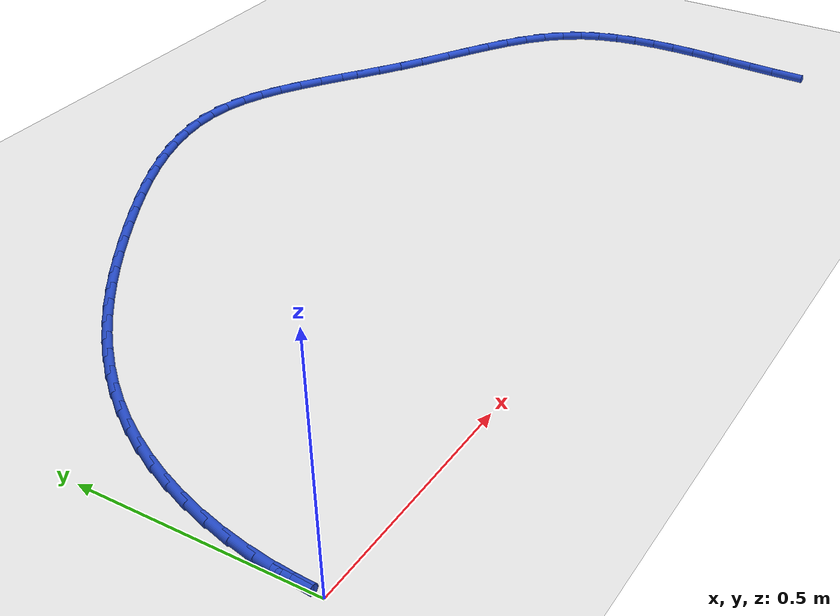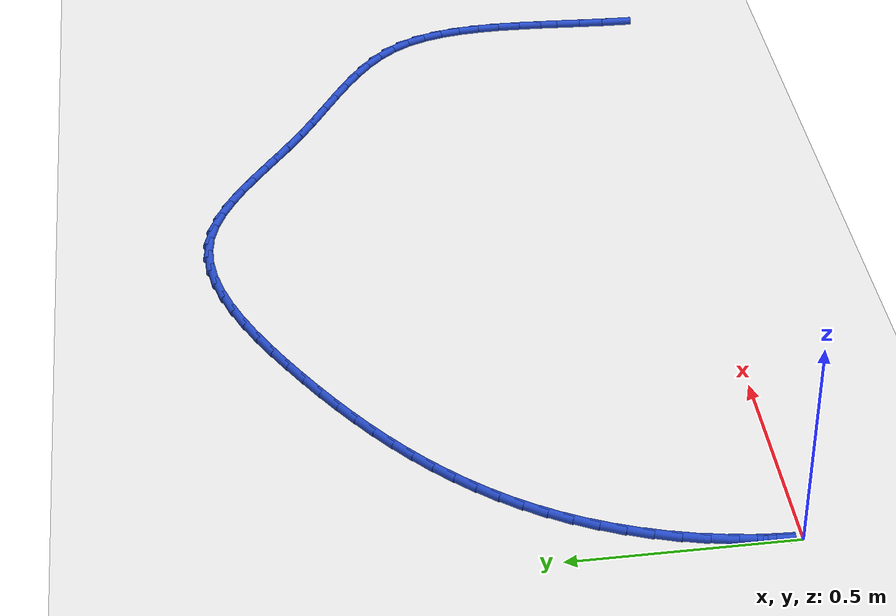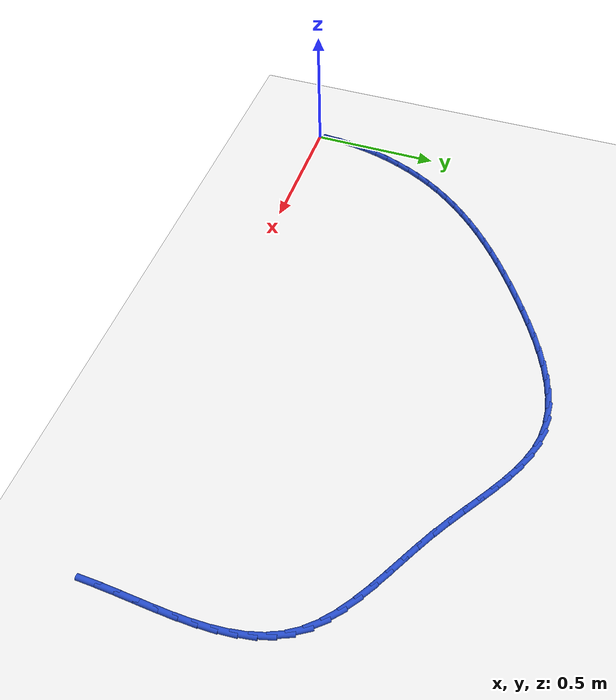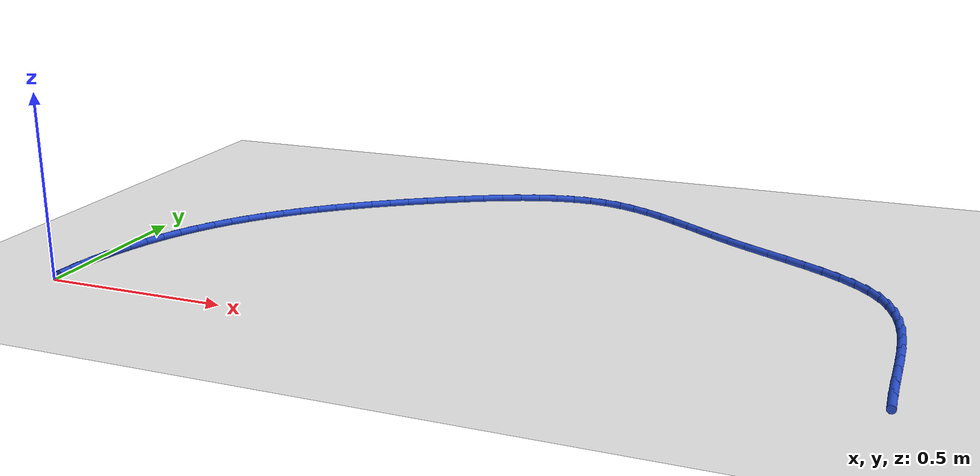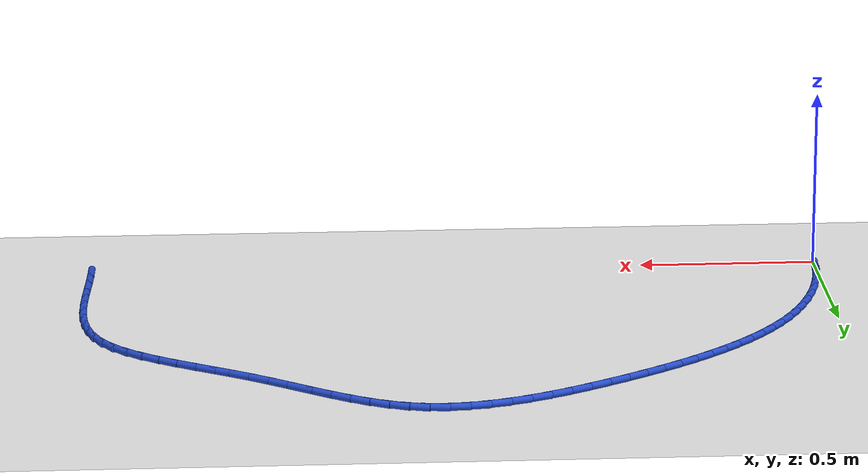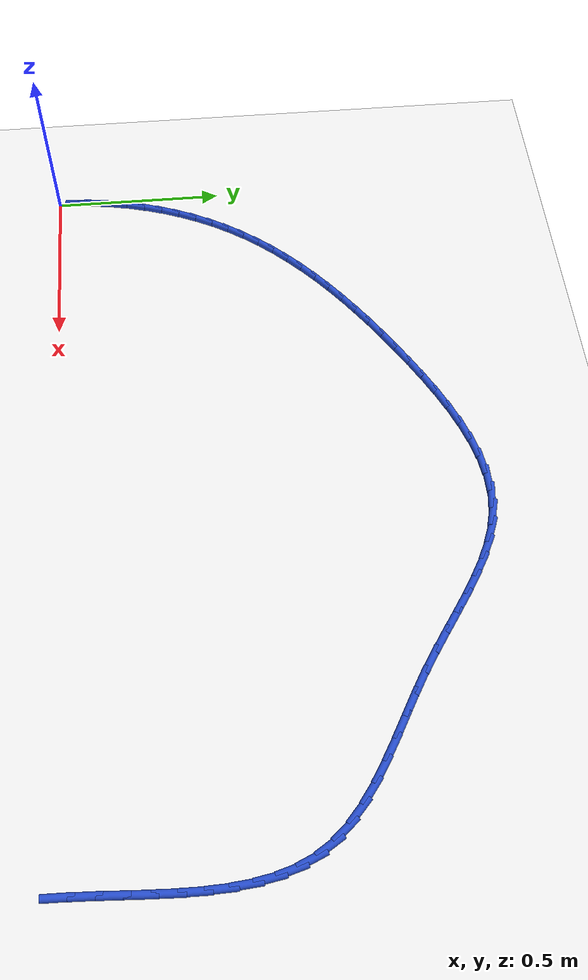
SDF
<sdf version="1.6">
 <world name="default">
  <model name="ground_plane">
   <static>1</static>
   <link name="link">
    <collision name="collision">
     <geometry><plane><normal>0 0 1</normal><size>100 100</size></plane></geometry>
     <surface><friction><ode><mu>100</mu><mu2>50</mu2></ode></friction></surface>
    </collision>
    <visual name="visual">
     <cast_shadows>0</cast_shadows>
     <geometry><plane><normal>0 0 1</normal><size>100 100</size></plane></geometry>
     <material>
      <script><uri>file://media/materials/scripts/gazebo.material</uri><name>Gazebo/WhiteGlow</name></script>
     </material>
    </visual>
   </link>
  </model>
  <model name="line">
   <link name="link_1">
    <pose>0.002143274971639117 0.058206338962033 0.01 0 1.57 1.477408817202381</pose>
    <collision name="collision">
     <geometry><cylinder><radius>0.01</radius><length>0.08</length></cylinder></geometry>
    </collision>
    <visual name="visual">
     <material>
      <script><name>Gazebo/Blue</name><uri>file://media/materials/scripts/gazebo.material</uri></script>
     </material>
     <geometry><cylinder><radius>0.01</radius><length>0.08</length></cylinder></geometry>
    </visual>
   </link>
   <link name="link_2">
    <pose>0.0075591069849473246 0.11603075940068548 0.01 0 1.57 1.4215644441442734</pose>
    <collision name="collision">
     <geometry><cylinder><radius>0.01</radius><length>0.08</length></cylinder></geometry>
    </collision>
    <visual name="visual">
     <material>
      <script><name>Gazebo/Blue</name><uri>file://media/materials/scripts/gazebo.material</uri></script>
     </material>
     <geometry><cylinder><radius>0.01</radius><length>0.08</length></cylinder></geometry>
    </visual>
   </link>
   <link name="link_3">
    <pose>0.016165661979714384 0.17327435919353368 0.01 0 1.57 1.36621350218202</pose>
    <collision name="collision">
     <geometry><cylinder><radius>0.01</radius><length>0.08</length></cylinder></geometry>
    </collision>
    <visual name="visual">
     <material>
      <script><name>Gazebo/Blue</name><uri>file://media/materials/scripts/gazebo.material</uri></script>
     </material>
     <geometry><cylinder><radius>0.01</radius><length>0.08</length></cylinder></geometry>
    </visual>
   </link>
   <link name="link_4">
    <pose>0.02788110589573012 0.22973823621815392 0.01 0 1.57 1.3110955089772809</pose>
    <collision name="collision">
     <geometry><cylinder><radius>0.01</radius><length>0.08</length></cylinder></geometry>
    </collision>
    <visual name="visual">
     <material>
      <script><name>Gazebo/Blue</name><uri>file://media/materials/scripts/gazebo.material</uri></script>
     </material>
     <geometry><cylinder><radius>0.01</radius><length>0.08</length></cylinder></geometry>
    </visual>
   </link>
   <link name="link_5">
    <pose>0.04262360467278443 0.28522348835212274 0.01 0 1.57 1.2559365343823319</pose>
    <collision name="collision">
     <geometry><cylinder><radius>0.01</radius><length>0.08</length></cylinder></geometry>
    </collision>
    <visual name="visual">
     <material>
      <script><name>Gazebo/Blue</name><uri>file://media/materials/scripts/gazebo.material</uri></script>
     </material>
     <geometry><cylinder><radius>0.01</radius><length>0.08</length></cylinder></geometry>
    </visual>
   </link>
   <link name="link_6">
    <pose>0.060311324250667146 0.3395312134730162 0.01 0 1.57 1.2004514054745623</pose>
    <collision name="collision">
     <geometry><cylinder><radius>0.01</radius><length>0.08</length></cylinder></geometry>
    </collision>
    <visual name="visual">
     <material>
      <script><name>Gazebo/Blue</name><uri>file://media/materials/scripts/gazebo.material</uri></script>
     </material>
     <geometry><cylinder><radius>0.01</radius><length>0.08</length></cylinder></geometry>
    </visual>
   </link>
   <link name="link_7">
    <pose>0.08086243056916811 0.3924625094584107 0.01 0 1.57 1.1443457385676046</pose>
    <collision name="collision">
     <geometry><cylinder><radius>0.01</radius><length>0.08</length></cylinder></geometry>
    </collision>
    <visual name="visual">
     <material>
      <script><name>Gazebo/Blue</name><uri>file://media/materials/scripts/gazebo.material</uri></script>
     </material>
     <geometry><cylinder><radius>0.01</radius><length>0.08</length></cylinder></geometry>
    </visual>
   </link>
   <link name="link_8">
    <pose>0.10419508956807717 0.4438184741858824 0.01 0 1.57 1.087318199513742</pose>
    <collision name="collision">
     <geometry><cylinder><radius>0.01</radius><length>0.08</length></cylinder></geometry>
    </collision>
    <visual name="visual">
     <material>
      <script><name>Gazebo/Blue</name><uri>file://media/materials/scripts/gazebo.material</uri></script>
     </material>
     <geometry><cylinder><radius>0.01</radius><length>0.08</length></cylinder></geometry>
    </visual>
   </link>
   <link name="link_9">
    <pose>0.1302274671871842 0.4934002055330079 0.01 0 1.57 1.0294176238372474</pose>
    <collision name="collision">
     <geometry><cylinder><radius>0.01</radius><length>0.08</length></cylinder></geometry>
    </collision>
    <visual name="visual">
     <material>
      <script><name>Gazebo/Blue</name><uri>file://media/materials/scripts/gazebo.material</uri></script>
     </material>
     <geometry><cylinder><radius>0.01</radius><length>0.08</length></cylinder></geometry>
    </visual>
   </link>
   <link name="link_10">
    <pose>0.15887488737706212 0.5410422631524515 0.01 0 1.57 0.9727533422366311</pose>
    <collision name="collision">
     <geometry><cylinder><radius>0.01</radius><length>0.08</length></cylinder></geometry>
    </collision>
    <visual name="visual">
     <material>
      <script><name>Gazebo/Blue</name><uri>file://media/materials/scripts/gazebo.material</uri></script>
     </material>
     <geometry><cylinder><radius>0.01</radius><length>0.08</length></cylinder></geometry>
    </visual>
   </link>
   <link name="link_11">
    <pose>0.19003549920841117 0.5867814249051841 0.01 0 1.57 0.9185564081571217</pose>
    <collision name="collision">
     <geometry><cylinder><radius>0.01</radius><length>0.08</length></cylinder></geometry>
    </collision>
    <visual name="visual">
     <material>
      <script><name>Gazebo/Blue</name><uri>file://media/materials/scripts/gazebo.material</uri></script>
     </material>
     <geometry><cylinder><radius>0.01</radius><length>0.08</length></cylinder></geometry>
    </visual>
   </link>
   <link name="link_12">
    <pose>0.22360103262190523 0.6307300479273971 0.01 0 1.57 0.8672343503055672</pose>
    <collision name="collision">
     <geometry><cylinder><radius>0.01</radius><length>0.08</length></cylinder></geometry>
    </collision>
    <visual name="visual">
     <material>
      <script><name>Gazebo/Blue</name><uri>file://media/materials/scripts/gazebo.material</uri></script>
     </material>
     <geometry><cylinder><radius>0.01</radius><length>0.08</length></cylinder></geometry>
    </visual>
   </link>
   <link name="link_13">
    <pose>0.2594632064468007 0.6730006201818697 0.01 0 1.57 0.8190906729330214</pose>
    <collision name="collision">
     <geometry><cylinder><radius>0.01</radius><length>0.08</length></cylinder></geometry>
    </collision>
    <visual name="visual">
     <material>
      <script><name>Gazebo/Blue</name><uri>file://media/materials/scripts/gazebo.material</uri></script>
     </material>
     <geometry><cylinder><radius>0.01</radius><length>0.08</length></cylinder></geometry>
    </visual>
   </link>
   <link name="link_14">
    <pose>0.29751373951235427 0.7137056296313818 0.01 0 1.57 0.7743297271647759</pose>
    <collision name="collision">
     <geometry><cylinder><radius>0.01</radius><length>0.08</length></cylinder></geometry>
    </collision>
    <visual name="visual">
     <material>
      <script><name>Gazebo/Blue</name><uri>file://media/materials/scripts/gazebo.material</uri></script>
     </material>
     <geometry><cylinder><radius>0.01</radius><length>0.08</length></cylinder></geometry>
    </visual>
   </link>
   <link name="link_15">
    <pose>0.33764435064782206 0.7529575642387125 0.01 0 1.57 0.7330667396349645</pose>
    <collision name="collision">
     <geometry><cylinder><radius>0.01</radius><length>0.08</length></cylinder></geometry>
    </collision>
    <visual name="visual">
     <material>
      <script><name>Gazebo/Blue</name><uri>file://media/materials/scripts/gazebo.material</uri></script>
     </material>
     <geometry><cylinder><radius>0.01</radius><length>0.08</length></cylinder></geometry>
    </visual>
   </link>
   <link name="link_16">
    <pose>0.3797467586824609 0.790868911966642 0.01 0 1.57 0.6953417352910714</pose>
    <collision name="collision">
     <geometry><cylinder><radius>0.01</radius><length>0.08</length></cylinder></geometry>
    </collision>
    <visual name="visual">
     <material>
      <script><name>Gazebo/Blue</name><uri>file://media/materials/scripts/gazebo.material</uri></script>
     </material>
     <geometry><cylinder><radius>0.01</radius><length>0.08</length></cylinder></geometry>
    </visual>
   </link>
   <link name="link_17">
    <pose>0.423712682445527 0.8275521607779492 0.01 0 1.57 0.6611349717072738</pose>
    <collision name="collision">
     <geometry><cylinder><radius>0.01</radius><length>0.08</length></cylinder></geometry>
    </collision>
    <visual name="visual">
     <material>
      <script><name>Gazebo/Blue</name><uri>file://media/materials/scripts/gazebo.material</uri></script>
     </material>
     <geometry><cylinder><radius>0.01</radius><length>0.08</length></cylinder></geometry>
    </visual>
   </link>
   <link name="link_18">
    <pose>0.46943384076627703 0.8631197986354142 0.01 0 1.57 0.6303820734764467</pose>
    <collision name="collision">
     <geometry><cylinder><radius>0.01</radius><length>0.08</length></cylinder></geometry>
    </collision>
    <visual name="visual">
     <material>
      <script><name>Gazebo/Blue</name><uri>file://media/materials/scripts/gazebo.material</uri></script>
     </material>
     <geometry><cylinder><radius>0.01</radius><length>0.08</length></cylinder></geometry>
    </visual>
   </link>
   <link name="link_19">
    <pose>0.5168019524739672 0.8976843135018163 0.01 0 1.57 0.602987701111885</pose>
    <collision name="collision">
     <geometry><cylinder><radius>0.01</radius><length>0.08</length></cylinder></geometry>
    </collision>
    <visual name="visual">
     <material>
      <script><name>Gazebo/Blue</name><uri>file://media/materials/scripts/gazebo.material</uri></script>
     </material>
     <geometry><cylinder><radius>0.01</radius><length>0.08</length></cylinder></geometry>
    </visual>
   </link>
   <link name="link_20">
    <pose>0.5657087363978541 0.9313581933399351 0.01 0 1.57 0.5788371581238002</pose>
    <collision name="collision">
     <geometry><cylinder><radius>0.01</radius><length>0.08</length></cylinder></geometry>
    </collision>
    <visual name="visual">
     <material>
      <script><name>Gazebo/Blue</name><uri>file://media/materials/scripts/gazebo.material</uri></script>
     </material>
     <geometry><cylinder><radius>0.01</radius><length>0.08</length></cylinder></geometry>
    </visual>
   </link>
   <link name="link_21">
    <pose>0.6160459113671943 0.9642539261125499 0.01 0 1.57 0.5578057228505976</pose>
    <collision name="collision">
     <geometry><cylinder><radius>0.01</radius><length>0.08</length></cylinder></geometry>
    </collision>
    <visual name="visual">
     <material>
      <script><name>Gazebo/Blue</name><uri>file://media/materials/scripts/gazebo.material</uri></script>
     </material>
     <geometry><cylinder><radius>0.01</radius><length>0.08</length></cylinder></geometry>
    </visual>
   </link>
   <link name="link_22">
    <pose>0.6677051955383404 0.9964839963238391 0.01 0 1.57 0.5378558969572911</pose>
    <collision name="collision">
     <geometry><cylinder><radius>0.01</radius><length>0.08</length></cylinder></geometry>
    </collision>
    <visual name="visual">
     <material>
      <script><name>Gazebo/Blue</name><uri>file://media/materials/scripts/gazebo.material</uri></script>
     </material>
     <geometry><cylinder><radius>0.01</radius><length>0.08</length></cylinder></geometry>
    </visual>
   </link>
   <link name="link_23">
    <pose>0.7205481341176398 1.0280058050879728 0.01 0 1.57 0.5117162316238449</pose>
    <collision name="collision">
     <geometry><cylinder><radius>0.01</radius><length>0.08</length></cylinder></geometry>
    </collision>
    <visual name="visual">
     <material>
      <script><name>Gazebo/Blue</name><uri>file://media/materials/scripts/gazebo.material</uri></script>
     </material>
     <geometry><cylinder><radius>0.01</radius><length>0.08</length></cylinder></geometry>
    </visual>
   </link>
   <link name="link_24">
    <pose>0.7743256151867948 1.058207996337085 0.01 0 1.57 0.4771064160655235</pose>
    <collision name="collision">
     <geometry><cylinder><radius>0.01</radius><length>0.08</length></cylinder></geometry>
    </collision>
    <visual name="visual">
     <material>
      <script><name>Gazebo/Blue</name><uri>file://media/materials/scripts/gazebo.material</uri></script>
     </material>
     <geometry><cylinder><radius>0.01</radius><length>0.08</length></cylinder></geometry>
    </visual>
   </link>
   <link name="link_25">
    <pose>0.8287631658113811 1.086348863064665 0.01 0 1.57 0.43293160979130996</pose>
    <collision name="collision">
     <geometry><cylinder><radius>0.01</radius><length>0.08</length></cylinder></geometry>
    </collision>
    <visual name="visual">
     <material>
      <script><name>Gazebo/Blue</name><uri>file://media/materials/scripts/gazebo.material</uri></script>
     </material>
     <geometry><cylinder><radius>0.01</radius><length>0.08</length></cylinder></geometry>
    </visual>
   </link>
   <link name="link_26">
    <pose>0.8835863130569741 1.1116866982642009 0.01 0 1.57 0.3776688760962628</pose>
    <collision name="collision">
     <geometry><cylinder><radius>0.01</radius><length>0.08</length></cylinder></geometry>
    </collision>
    <visual name="visual">
     <material>
      <script><name>Gazebo/Blue</name><uri>file://media/materials/scripts/gazebo.material</uri></script>
     </material>
     <geometry><cylinder><radius>0.01</radius><length>0.08</length></cylinder></geometry>
    </visual>
   </link>
   <link name="link_27">
    <pose>0.9385205839891511 1.1334797949291837 0.01 0 1.57 0.3093709451765337</pose>
    <collision name="collision">
     <geometry><cylinder><radius>0.01</radius><length>0.08</length></cylinder></geometry>
    </collision>
    <visual name="visual">
     <material>
      <script><name>Gazebo/Blue</name><uri>file://media/materials/scripts/gazebo.material</uri></script>
     </material>
     <geometry><cylinder><radius>0.01</radius><length>0.08</length></cylinder></geometry>
    </visual>
   </link>
   <link name="link_28">
    <pose>0.9932915056734871 1.1509864460531014 0.01 0 1.57 0.22575172174026453</pose>
    <collision name="collision">
     <geometry><cylinder><radius>0.01</radius><length>0.08</length></cylinder></geometry>
    </collision>
    <visual name="visual">
     <material>
      <script><name>Gazebo/Blue</name><uri>file://media/materials/scripts/gazebo.material</uri></script>
     </material>
     <geometry><cylinder><radius>0.01</radius><length>0.08</length></cylinder></geometry>
    </visual>
   </link>
   <link name="link_29">
    <pose>1.0476246051755598 1.163464944629445 0.01 0 1.57 0.12446587486869443</pose>
    <collision name="collision">
     <geometry><cylinder><radius>0.01</radius><length>0.08</length></cylinder></geometry>
    </collision>
    <visual name="visual">
     <material>
      <script><name>Gazebo/Blue</name><uri>file://media/materials/scripts/gazebo.material</uri></script>
     </material>
     <geometry><cylinder><radius>0.01</radius><length>0.08</length></cylinder></geometry>
    </visual>
   </link>
   <link name="link_30">
    <pose>1.1012454095609432 1.170173583651702 0.01 0 1.57 0.003744184456880021</pose>
    <collision name="collision">
     <geometry><cylinder><radius>0.01</radius><length>0.08</length></cylinder></geometry>
    </collision>
    <visual name="visual">
     <material>
      <script><name>Gazebo/Blue</name><uri>file://media/materials/scripts/gazebo.material</uri></script>
     </material>
     <geometry><cylinder><radius>0.01</radius><length>0.08</length></cylinder></geometry>
    </visual>
   </link>
   <link name="link_31">
    <pose>1.1538794458952144 1.1703706561133627 0.01 0 1.57 -0.1362777572695397</pose>
    <collision name="collision">
     <geometry><cylinder><radius>0.01</radius><length>0.08</length></cylinder></geometry>
    </collision>
    <visual name="visual">
     <material>
      <script><name>Gazebo/Blue</name><uri>file://media/materials/scripts/gazebo.material</uri></script>
     </material>
     <geometry><cylinder><radius>0.01</radius><length>0.08</length></cylinder></geometry>
    </visual>
   </link>
   <link name="link_32">
    <pose>1.2052558873723844 1.163325522601262 0.01 0 1.57 -0.27892139177132647</pose>
    <collision name="collision">
     <geometry><cylinder><radius>0.01</radius><length>0.08</length></cylinder></geometry>
    </collision>
    <visual name="visual">
     <material>
      <script><name>Gazebo/Blue</name><uri>file://media/materials/scripts/gazebo.material</uri></script>
     </material>
     <geometry><cylinder><radius>0.01</radius><length>0.08</length></cylinder></geometry>
    </visual>
   </link>
   <link name="link_33">
    <pose>1.2553273264457774 1.1489857187999484 0.01 0 1.57 -0.39795699870893403</pose>
    <collision name="collision">
     <geometry><cylinder><radius>0.01</radius><length>0.08</length></cylinder></geometry>
    </collision>
    <visual name="visual">
     <material>
      <script><name>Gazebo/Blue</name><uri>file://media/materials/scripts/gazebo.material</uri></script>
     </material>
     <geometry><cylinder><radius>0.01</radius><length>0.08</length></cylinder></geometry>
    </visual>
   </link>
   <link name="link_34">
    <pose>1.3043953568792896 1.1283581519030756 0.01 0 1.57 -0.49003506738977853</pose>
    <collision name="collision">
     <geometry><cylinder><radius>0.01</radius><length>0.08</length></cylinder></geometry>
    </collision>
    <visual name="visual">
     <material>
      <script><name>Gazebo/Blue</name><uri>file://media/materials/scripts/gazebo.material</uri></script>
     </material>
     <geometry><cylinder><radius>0.01</radius><length>0.08</length></cylinder></geometry>
    </visual>
   </link>
   <link name="link_35">
    <pose>1.352791912028568 1.1025418230252135 0.01 0 1.57 -0.5566585420425708</pose>
    <collision name="collision">
     <geometry><cylinder><radius>0.01</radius><length>0.08</length></cylinder></geometry>
    </collision>
    <visual name="visual">
     <material>
      <script><name>Gazebo/Blue</name><uri>file://media/materials/scripts/gazebo.material</uri></script>
     </material>
     <geometry><cylinder><radius>0.01</radius><length>0.08</length></cylinder></geometry>
    </visual>
   </link>
   <link name="link_36">
    <pose>1.4008489252492582 1.072635733280933 0.01 0 1.57 -0.6003470063804398</pose>
    <collision name="collision">
     <geometry><cylinder><radius>0.01</radius><length>0.08</length></cylinder></geometry>
    </collision>
    <visual name="visual">
     <material>
      <script><name>Gazebo/Blue</name><uri>file://media/materials/scripts/gazebo.material</uri></script>
     </material>
     <geometry><cylinder><radius>0.01</radius><length>0.08</length></cylinder></geometry>
    </visual>
   </link>
   <link name="link_37">
    <pose>1.4488983298970068 1.0397388837848045 0.01 0 1.57 -0.6234717561852816</pose>
    <collision name="collision">
     <geometry><cylinder><radius>0.01</radius><length>0.08</length></cylinder></geometry>
    </collision>
    <visual name="visual">
     <material>
      <script><name>Gazebo/Blue</name><uri>file://media/materials/scripts/gazebo.material</uri></script>
     </material>
     <geometry><cylinder><radius>0.01</radius><length>0.08</length></cylinder></geometry>
    </visual>
   </link>
   <link name="link_38">
    <pose>1.4972720593274587 1.0049502756513982 0.01 0 1.57 -0.6277709250855734</pose>
    <collision name="collision">
     <geometry><cylinder><radius>0.01</radius><length>0.08</length></cylinder></geometry>
    </collision>
    <visual name="visual">
     <material>
      <script><name>Gazebo/Blue</name><uri>file://media/materials/scripts/gazebo.material</uri></script>
     </material>
     <geometry><cylinder><radius>0.01</radius><length>0.08</length></cylinder></geometry>
    </visual>
   </link>
   <link name="link_39">
    <pose>1.5463020468962612 0.9693689099952848 0.01 0 1.57 -0.614238117465308</pose>
    <collision name="collision">
     <geometry><cylinder><radius>0.01</radius><length>0.08</length></cylinder></geometry>
    </collision>
    <visual name="visual">
     <material>
      <script><name>Gazebo/Blue</name><uri>file://media/materials/scripts/gazebo.material</uri></script>
     </material>
     <geometry><cylinder><radius>0.01</radius><length>0.08</length></cylinder></geometry>
    </visual>
   </link>
   <link name="link_40">
    <pose>1.596320225959059 0.9340937879310347 0.01 0 1.57 -0.5837516183680864</pose>
    <collision name="collision">
     <geometry><cylinder><radius>0.01</radius><length>0.08</length></cylinder></geometry>
    </collision>
    <visual name="visual">
     <material>
      <script><name>Gazebo/Blue</name><uri>file://media/materials/scripts/gazebo.material</uri></script>
     </material>
     <geometry><cylinder><radius>0.01</radius><length>0.08</length></cylinder></geometry>
    </visual>
   </link>
   <link name="link_41">
    <pose>1.6476381797299307 0.9001960383913923 0.01 0 1.57 -0.552269740236562</pose>
    <collision name="collision">
     <geometry><cylinder><radius>0.01</radius><length>0.08</length></cylinder></geometry>
    </collision>
    <visual name="visual">
     <material>
      <script><name>Gazebo/Blue</name><uri>file://media/materials/scripts/gazebo.material</uri></script>
     </material>
     <geometry><cylinder><radius>0.01</radius><length>0.08</length></cylinder></geometry>
    </visual>
   </link>
   <link name="link_42">
    <pose>1.699979578832467 0.8679415670842455 0.01 0 1.57 -0.5375929052391143</pose>
    <collision name="collision">
     <geometry><cylinder><radius>0.01</radius><length>0.08</length></cylinder></geometry>
    </collision>
    <visual name="visual">
     <material>
      <script><name>Gazebo/Blue</name><uri>file://media/materials/scripts/gazebo.material</uri></script>
     </material>
     <geometry><cylinder><radius>0.01</radius><length>0.08</length></cylinder></geometry>
    </visual>
   </link>
   <link name="link_43">
    <pose>1.7524047049711744 0.8366876817840443 0.01 0 1.57 -0.540768442576358</pose>
    <collision name="collision">
     <geometry><cylinder><radius>0.01</radius><length>0.08</length></cylinder></geometry>
    </collision>
    <visual name="visual">
     <material>
      <script><name>Gazebo/Blue</name><uri>file://media/materials/scripts/gazebo.material</uri></script>
     </material>
     <geometry><cylinder><radius>0.01</radius><length>0.08</length></cylinder></geometry>
    </visual>
   </link>
   <link name="link_44">
    <pose>1.803938325375896 0.8057430485448853 0.01 0 1.57 -0.5627138057682131</pose>
    <collision name="collision">
     <geometry><cylinder><radius>0.01</radius><length>0.08</length></cylinder></geometry>
    </collision>
    <visual name="visual">
     <material>
      <script><name>Gazebo/Blue</name><uri>file://media/materials/scripts/gazebo.material</uri></script>
     </material>
     <geometry><cylinder><radius>0.01</radius><length>0.08</length></cylinder></geometry>
    </visual>
   </link>
   <link name="link_45">
    <pose>1.853605207276473 0.7744163334208649 0.01 0 1.57 -0.6052975381607174</pose>
    <collision name="collision">
     <geometry><cylinder><radius>0.01</radius><length>0.08</length></cylinder></geometry>
    </collision>
    <visual name="visual">
     <material>
      <script><name>Gazebo/Blue</name><uri>file://media/materials/scripts/gazebo.material</uri></script>
     </material>
     <geometry><cylinder><radius>0.01</radius><length>0.08</length></cylinder></geometry>
    </visual>
   </link>
   <link name="link_46">
    <pose>1.900430117902748 0.7420162024660792 0.01 0 1.57 -0.6713106760674347</pose>
    <collision name="collision">
     <geometry><cylinder><radius>0.01</radius><length>0.08</length></cylinder></geometry>
    </collision>
    <visual name="visual">
     <material>
      <script><name>Gazebo/Blue</name><uri>file://media/materials/scripts/gazebo.material</uri></script>
     </material>
     <geometry><cylinder><radius>0.01</radius><length>0.08</length></cylinder></geometry>
    </visual>
   </link>
   <link name="link_47">
    <pose>1.9434378244845631 0.7078513217346248 0.01 0 1.57 -0.764097463277751</pose>
    <collision name="collision">
     <geometry><cylinder><radius>0.01</radius><length>0.08</length></cylinder></geometry>
    </collision>
    <visual name="visual">
     <material>
      <script><name>Gazebo/Blue</name><uri>file://media/materials/scripts/gazebo.material</uri></script>
     </material>
     <geometry><cylinder><radius>0.01</radius><length>0.08</length></cylinder></geometry>
    </visual>
   </link>
   <link name="link_48">
    <pose>1.9816530942517605 0.6712303572805979 0.01 0 1.57 -0.8864264633938631</pose>
    <collision name="collision">
     <geometry><cylinder><radius>0.01</radius><length>0.08</length></cylinder></geometry>
    </collision>
    <visual name="visual">
     <material>
      <script><name>Gazebo/Blue</name><uri>file://media/materials/scripts/gazebo.material</uri></script>
     </material>
     <geometry><cylinder><radius>0.01</radius><length>0.08</length></cylinder></geometry>
    </visual>
   </link>
   <link name="link_49">
    <pose>2.014100694434182 0.631461975158095 0.01 0 1.57 -1.03640727281629</pose>
    <collision name="collision">
     <geometry><cylinder><radius>0.01</radius><length>0.08</length></cylinder></geometry>
    </collision>
    <visual name="visual">
     <material>
      <script><name>Gazebo/Blue</name><uri>file://media/materials/scripts/gazebo.material</uri></script>
     </material>
     <geometry><cylinder><radius>0.01</radius><length>0.08</length></cylinder></geometry>
    </visual>
   </link>
   <link name="link_50">
    <pose>2.039880947808464 0.5879015983880669 0.01 0 1.57 -1.185412046097612</pose>
    <collision name="collision">
     <geometry><cylinder><radius>0.01</radius><length>0.08</length></cylinder></geometry>
    </collision>
    <visual name="visual">
     <material>
      <script><name>Gazebo/Blue</name><uri>file://media/materials/scripts/gazebo.material</uri></script>
     </material>
     <geometry><cylinder><radius>0.01</radius><length>0.08</length></cylinder></geometry>
    </visual>
   </link>
   <link name="link_51">
    <pose>2.0590994704049383 0.5405267679607876 0.01 0 1.57 -1.311329177534423</pose>
    <collision name="collision">
     <geometry><cylinder><radius>0.01</radius><length>0.08</length></cylinder></geometry>
    </collision>
    <visual name="visual">
     <material>
      <script><name>Gazebo/Blue</name><uri>file://media/materials/scripts/gazebo.material</uri></script>
     </material>
     <geometry><cylinder><radius>0.01</radius><length>0.08</length></cylinder></geometry>
    </visual>
   </link>
   <link name="link_52">
    <pose>2.0725763191794333 0.4897571511178838 0.01 0 1.57 -1.4126340411943223</pose>
    <collision name="collision">
     <geometry><cylinder><radius>0.01</radius><length>0.08</length></cylinder></geometry>
    </collision>
    <visual name="visual">
     <material>
      <script><name>Gazebo/Blue</name><uri>file://media/materials/scripts/gazebo.material</uri></script>
     </material>
     <geometry><cylinder><radius>0.01</radius><length>0.08</length></cylinder></geometry>
    </visual>
   </link>
   <link name="link_53">
    <pose>2.0811468007468674 0.436021852234788 0.01 0 1.57 -1.4910074689876989</pose>
    <collision name="collision">
     <geometry><cylinder><radius>0.01</radius><length>0.08</length></cylinder></geometry>
    </collision>
    <visual name="visual">
     <material>
      <script><name>Gazebo/Blue</name><uri>file://media/materials/scripts/gazebo.material</uri></script>
     </material>
     <geometry><cylinder><radius>0.01</radius><length>0.08</length></cylinder></geometry>
    </visual>
   </link>
   <link name="link_54">
    <pose>2.085646221722159 0.3797499756869304 0.01 0 1.57 -1.5491539190343626</pose>
    <collision name="collision">
     <geometry><cylinder><radius>0.01</radius><length>0.08</length></cylinder></geometry>
    </collision>
    <visual name="visual">
     <material>
      <script><name>Gazebo/Blue</name><uri>file://media/materials/scripts/gazebo.material</uri></script>
     </material>
     <geometry><cylinder><radius>0.01</radius><length>0.08</length></cylinder></geometry>
    </visual>
   </link>
   <link name="link_55">
    <pose>2.086909888720226 0.32137062584974313 0.01 0 1.57 1.5518704558597065</pose>
    <collision name="collision">
     <geometry><cylinder><radius>0.01</radius><length>0.08</length></cylinder></geometry>
    </collision>
    <visual name="visual">
     <material>
      <script><name>Gazebo/Blue</name><uri>file://media/materials/scripts/gazebo.material</uri></script>
     </material>
     <geometry><cylinder><radius>0.01</radius><length>0.08</length></cylinder></geometry>
    </visual>
   </link>
   <link name="link_56">
    <pose>2.085773108355988 0.2613129070986565 0.01 0 1.57 1.5267528320400439</pose>
    <collision name="collision">
     <geometry><cylinder><radius>0.01</radius><length>0.08</length></cylinder></geometry>
    </collision>
    <visual name="visual">
     <material>
      <script><name>Gazebo/Blue</name><uri>file://media/materials/scripts/gazebo.material</uri></script>
     </material>
     <geometry><cylinder><radius>0.01</radius><length>0.08</length></cylinder></geometry>
    </visual>
   </link>
   <link name="link_57">
    <pose>2.083071187244363 0.2000059238091026 0.01 0 1.57 1.515614789188223</pose>
    <collision name="collision">
     <geometry><cylinder><radius>0.01</radius><length>0.08</length></cylinder></geometry>
    </collision>
    <visual name="visual">
     <material>
      <script><name>Gazebo/Blue</name><uri>file://media/materials/scripts/gazebo.material</uri></script>
     </material>
     <geometry><cylinder><radius>0.01</radius><length>0.08</length></cylinder></geometry>
    </visual>
   </link>
   <link name="link_58">
    <pose>2.07963943200027 0.13787878035651177 0.01 0 1.57 1.5176414140006476</pose>
    <collision name="collision">
     <geometry><cylinder><radius>0.01</radius><length>0.08</length></cylinder></geometry>
    </collision>
    <visual name="visual">
     <material>
      <script><name>Gazebo/Blue</name><uri>file://media/materials/scripts/gazebo.material</uri></script>
     </material>
     <geometry><cylinder><radius>0.01</radius><length>0.08</length></cylinder></geometry>
    </visual>
   </link>
   <link name="link_59">
    <pose>2.0763131492386258 0.07536058111631622 0.01 0 1.57 1.5321545523819962</pose>
    <collision name="collision">
     <geometry><cylinder><radius>0.01</radius><length>0.08</length></cylinder></geometry>
    </collision>
    <visual name="visual">
     <material>
      <script><name>Gazebo/Blue</name><uri>file://media/materials/scripts/gazebo.material</uri></script>
     </material>
     <geometry><cylinder><radius>0.01</radius><length>0.08</length></cylinder></geometry>
    </visual>
   </link>
   <link name="link_60">
    <pose>2.0738974516246302 0.01287651643676625 0.01 0 1.57 1.5482941783682402</pose>
    <collision name="collision">
     <geometry><cylinder><radius>0.01</radius><length>0.08</length></cylinder></geometry>
    </collision>
    <visual name="visual">
     <material>
      <script><name>Gazebo/Blue</name><uri>file://media/materials/scripts/gazebo.material</uri></script>
     </material>
     <geometry><cylinder><radius>0.01</radius><length>0.08</length></cylinder></geometry>
    </visual>
   </link>
   <link name="link_121">
    <pose>0.002159058360881299 0.058186306730808726 0.01 0 1.57 1.5337073895718392</pose>
    <collision name="collision">
     <geometry><cylinder><radius>0.01</radius><length>0.08</length></cylinder></geometry>
    </collision>
    <visual name="visual">
     <material>
      <script><name>Gazebo/Blue</name><uri>file://media/materials/scripts/gazebo.material</uri></script>
     </material>
     <geometry><cylinder><radius>0.01</radius><length>0.08</length></cylinder></geometry>
    </visual>
   </link>
  </model>
 </world>
</sdf>
